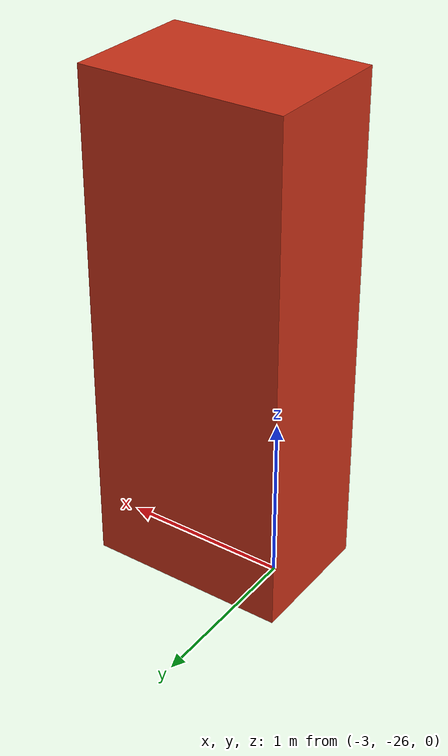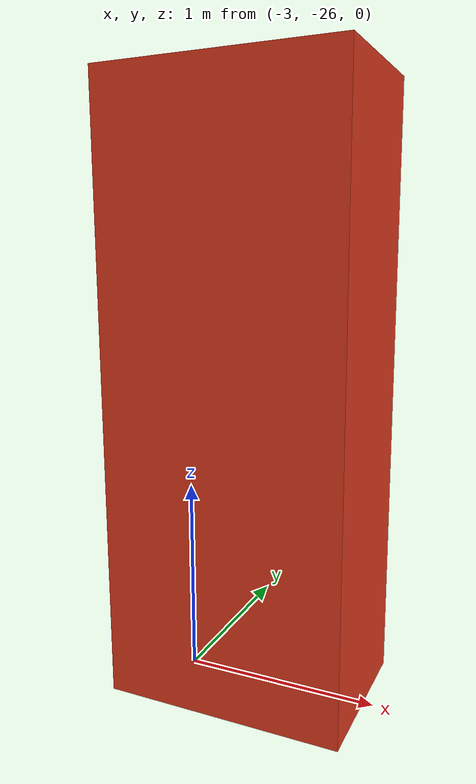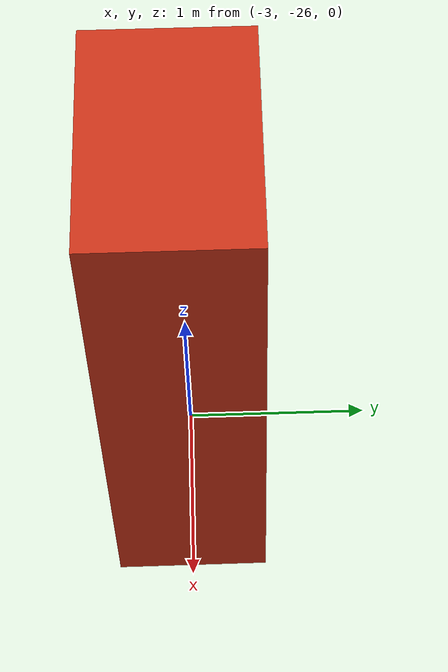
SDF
<?xml version="1.0"?>
<sdf version="1.9">
  <!-- Gazebo-only mirror of the left-wall obstacle fixture. -->
  <model name="right_wall_protrusion">
    <static>true</static>
    <pose>-2.65 -26.0 1.5 0 0 0</pose>
    <link name="body">
      <collision name="collision">
        <geometry><box><size>1.2 0.8 3.0</size></box></geometry>
      </collision>
      <visual name="visual">
        <geometry><box><size>1.2 0.8 3.0</size></box></geometry>
        <material>
          <ambient>0.8 0.2 0.1 1</ambient>
          <diffuse>0.8 0.2 0.1 1</diffuse>
        </material>
      </visual>
    </link>
  </model>
</sdf>
